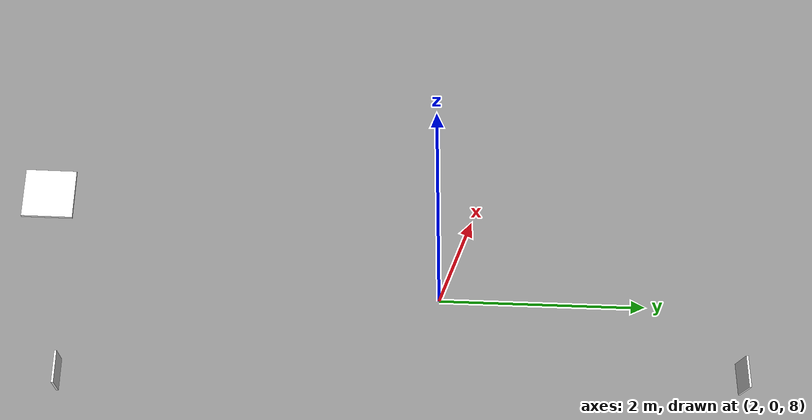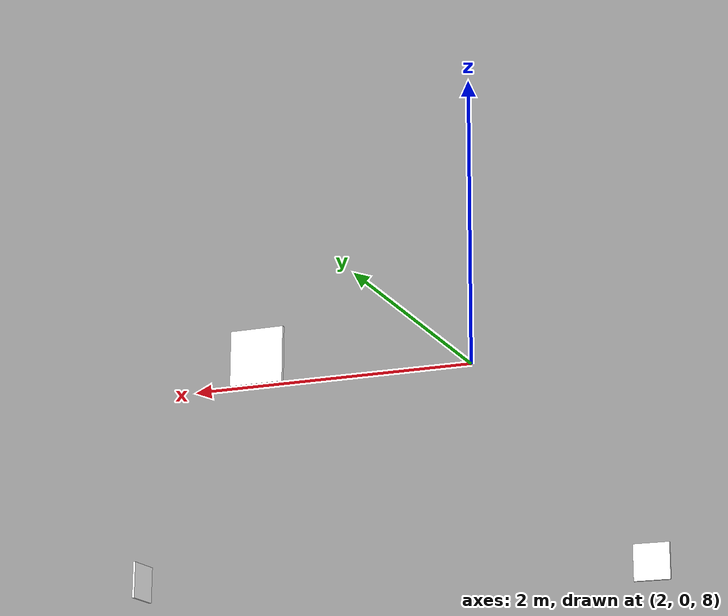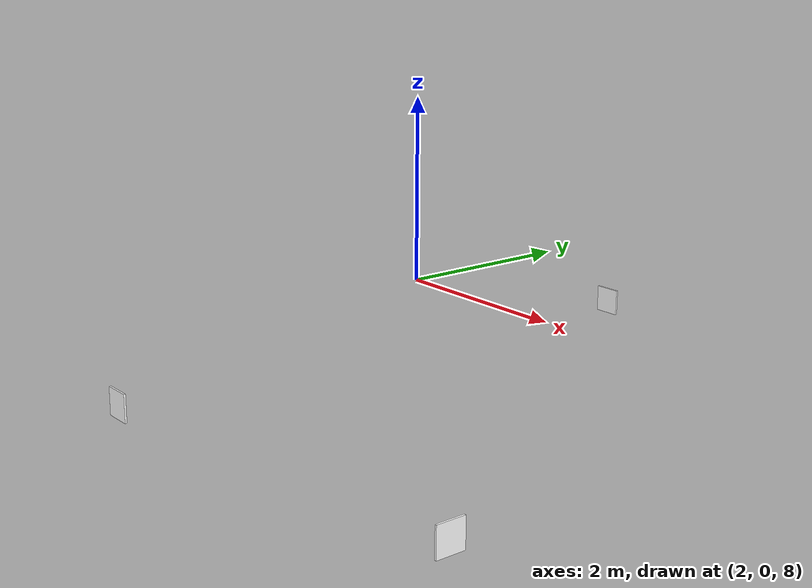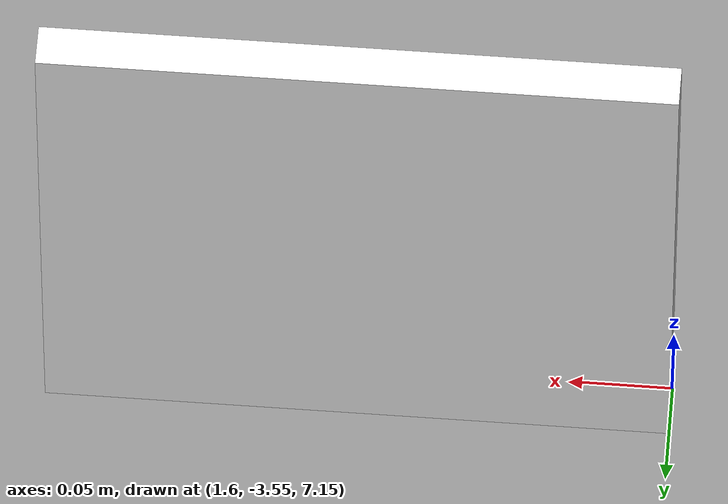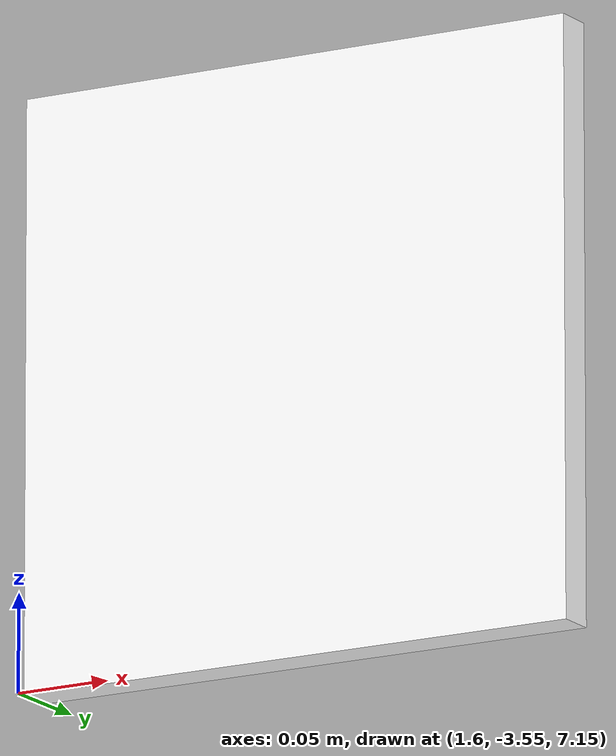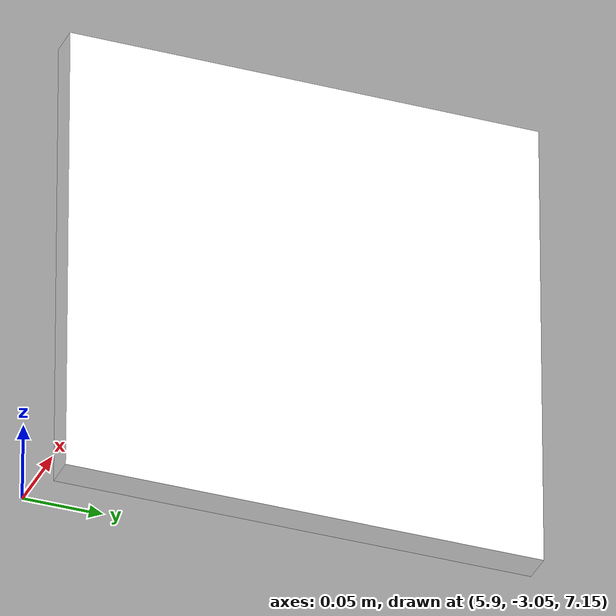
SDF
<?xml version="1.0" encoding="UTF-8"?>
<sdf version="1.9">
  <model name="posAprilTags">

    <model name="tag_0">
      <pose>1.75 -3.535 7.3 1.57079 1.57079 0</pose>
      <static>true</static>
      <link name="link">
        <visual name="visual">
          <geometry>
            <box>
              <size>0.3 0.3 0.02</size>
            </box>
          </geometry>
          <material>
            <diffuse>1 1 1 1</diffuse>
            <specular>0.4 0.4 0.4 1</specular>
            <pbr>
              <metal>
                <albedo_map>materials/textures/tag36_11_00000.png</albedo_map>
                <double_sided>true</double_sided>
              </metal>
            </pbr>
          </material>
        </visual>
      </link>
    </model>

    <model name="tag_1">
      <pose>2.2 2.835 7.3 1.57079 1.57079 0</pose>
      <static>true</static>
      <link name="link">
        <visual name="visual">
          <geometry>
            <box>
              <size>0.3 0.3 0.02</size>
            </box>
          </geometry>
          <material>
            <diffuse>1 1 1 1</diffuse>
            <specular>0.4 0.4 0.4 1</specular>
            <pbr>
              <metal>
                <albedo_map>materials/textures/tag36_11_00001.png</albedo_map>
                <double_sided>true</double_sided>
              </metal>
            </pbr>
          </material>
        </visual>
      </link>
    </model>

    <model name="tag_2">
      <pose>5.935 -2.89 7.3 0 1.57079 0</pose>
      <static>true</static>
      <link name="link">
        <visual name="visual">
          <geometry>
            <box>
              <size>0.3 0.3 0.02</size>
            </box>
          </geometry>
          <material>
            <diffuse>1 1 1 1</diffuse>
            <specular>0.4 0.4 0.4 1</specular>
            <pbr>
              <metal>
                <albedo_map>materials/textures/tag36_11_00002.png</albedo_map>
                <double_sided>true</double_sided>
              </metal>
            </pbr>
          </material>
        </visual>
      </link>
    </model>

  </model>
</sdf>
